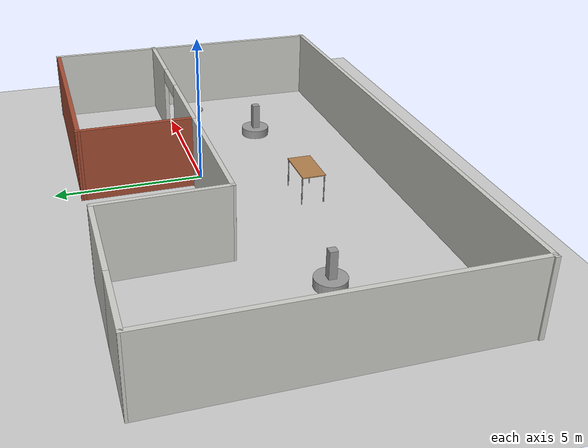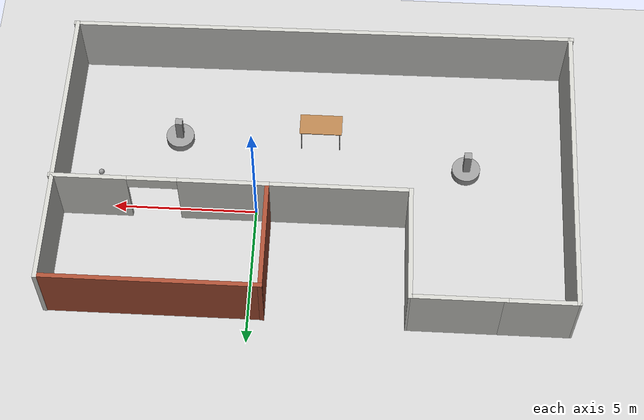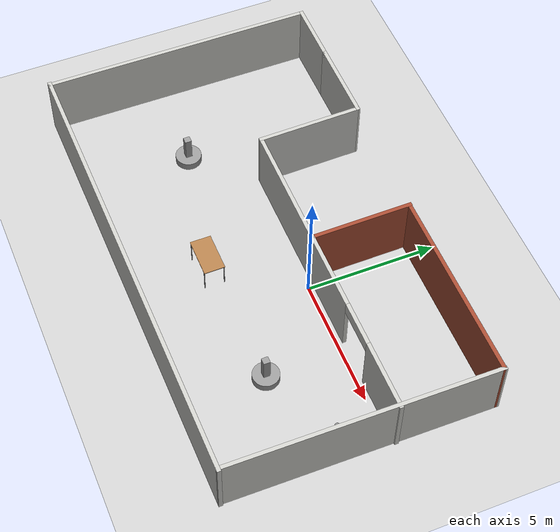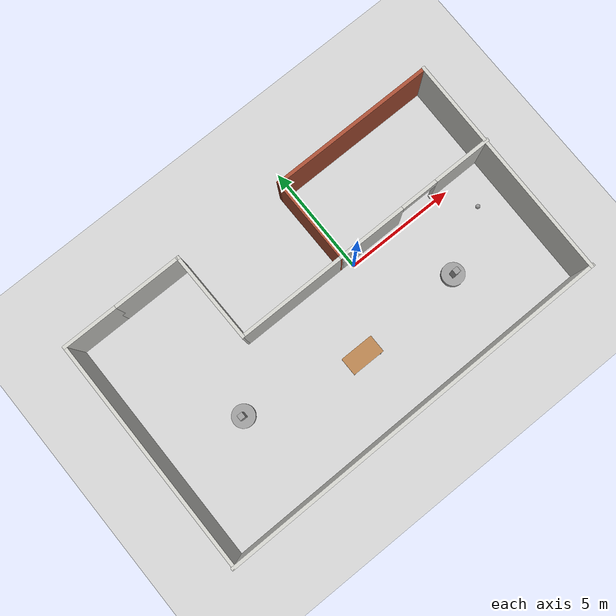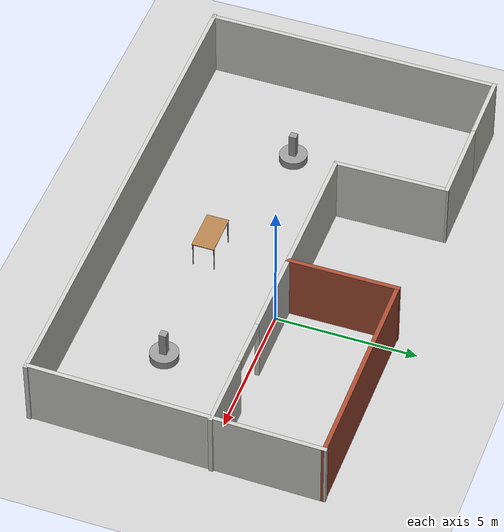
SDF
<sdf version="1.6">
 <world name="default">
  <light name="sun" type="directional">
   <pose>0 0 10 0 -0 0</pose>
   <diffuse>0.8 0.8 0.8 1</diffuse>
   <specular>0.2 0.2 0.2 1</specular>
   <attenuation>
    <range>1000</range>
    <constant>0.9</constant>
    <linear>0.01</linear>
    <quadratic>0.001</quadratic>
   </attenuation>
   <direction>-0.5 0.1 -0.9</direction>
  </light>
  <model name="ground_plane">
   <static>1</static>
   <link name="link">
    <collision name="collision">
     <geometry><plane><normal>0 0 1</normal><size>100 100</size></plane></geometry>
     <surface>
      <contact><collide_bitmask>65535</collide_bitmask></contact>
      <friction><ode><mu>100</mu><mu2>50</mu2></ode></friction>
     </surface>
    </collision>
    <visual name="visual">
     <cast_shadows>0</cast_shadows>
     <geometry><plane><normal>0 0 1</normal><size>100 100</size></plane></geometry>
     <material>
      <script><uri>file://media/materials/scripts/gazebo.material</uri><name>Gazebo/Grey</name></script>
     </material>
    </visual>
   </link>
  </model>
  <gravity>0 0 -9.8</gravity>
  <magnetic_field>6e-06 2.3e-05 -4.2e-05</magnetic_field>
  <atmosphere type="adiabatic"/>
  <physics name="default_physics" default="0" type="ode">
   <max_step_size>0.001</max_step_size>
   <real_time_factor>1</real_time_factor>
   <real_time_update_rate>1000</real_time_update_rate>
  </physics>
  <scene><ambient>0.4 0.4 0.4 1</ambient><background>0.7 0.7 0.7 1</background><shadows>1</shadows></scene>
  <spherical_coordinates>
   <surface_model>EARTH_WGS84</surface_model>
   <latitude_deg>0</latitude_deg>
   <longitude_deg>0</longitude_deg>
   <elevation>0</elevation>
   <heading_deg>0</heading_deg>
  </spherical_coordinates>
  <model name="building_and_obj">
   <model name="building">
    <pose>0.129082 1.24162 -0.218762 0 -0 0</pose>
    <link name="Wall_10">
     <collision name="Wall_10_Collision">
      <geometry><box><size>10.3107 0.15 2.5</size></box></geometry>
      <pose>0 0 1.25 0 -0 0</pose>
     </collision>
     <visual name="Wall_10_Visual">
      <pose>0 0 1.25 0 -0 0</pose>
      <geometry><box><size>10.3107 0.15 2.5</size></box></geometry>
      <material>
       <script><uri>file://media/materials/scripts/gazebo.material</uri><name>Gazebo/CeilingTiled</name></script>
       <ambient>0.435294 0.796078 0.67451 1</ambient>
      </material>
      <meta><layer>0</layer></meta>
     </visual>
     <pose>8.82308 0.001226 0 0 -0 -1.58217</pose>
    </link>
    <link name="Wall_11">
     <collision name="Wall_11_Collision">
      <geometry><box><size>17.8668 0.15 2.5</size></box></geometry>
      <pose>0 0 1.25 0 -0 0</pose>
     </collision>
     <visual name="Wall_11_Visual">
      <pose>0 0 1.25 0 -0 0</pose>
      <geometry><box><size>17.8668 0.15 2.5</size></box></geometry>
      <material>
       <script><uri>file://media/materials/scripts/gazebo.material</uri><name>Gazebo/CeilingTiled</name></script>
       <ambient>0.435294 0.796078 0.67451 1</ambient>
      </material>
      <meta><layer>0</layer></meta>
     </visual>
     <pose>-0.039606 -5.14818 0 0 -0 -3.13376</pose>
    </link>
    <link name="Wall_12">
     <collision name="Wall_12_Collision">
      <geometry><box><size>10.5618 0.15 2.5</size></box></geometry>
      <pose>0 0 1.25 0 -0 0</pose>
     </collision>
     <visual name="Wall_12_Visual">
      <pose>0 0 1.25 0 -0 0</pose>
      <geometry><box><size>10.5618 0.15 2.5</size></box></geometry>
      <material>
       <script><uri>file://media/materials/scripts/gazebo.material</uri><name>Gazebo/CeilingTiled</name></script>
       <ambient>0.435294 0.796078 0.67451 1</ambient>
      </material>
      <meta><layer>0</layer></meta>
     </visual>
     <pose>-8.82658 0.011386 0 0 -0 1.56601</pose>
    </link>
    <link name="Wall_13">
     <collision name="Wall_13_Collision">
      <geometry><box><size>2.5 0.15 2.5</size></box></geometry>
      <pose>0 0 1.25 0 -0 0</pose>
     </collision>
     <visual name="Wall_13_Visual">
      <pose>0 0 1.25 0 -0 0</pose>
      <geometry><box><size>2.5 0.15 2.5</size></box></geometry>
      <material>
       <script><uri>file://media/materials/scripts/gazebo.material</uri><name>Gazebo/CeilingTiled</name></script>
       <ambient>0.435294 0.796078 0.67451 1</ambient>
      </material>
      <meta><layer>0</layer></meta>
     </visual>
     <pose>-7.62667 5.21722 0 0 -0 0</pose>
    </link>
    <link name="Wall_18">
     <pose>5.22332 1.26722 0 0 -0 0</pose>
     <visual name="Wall_18_Visual_0">
      <pose>-2.18631 0 1.25 0 -0 0</pose>
      <geometry><box><size>3.12738 0.15 2.5</size></box></geometry>
      <material>
       <script><uri>file://media/materials/scripts/gazebo.material</uri><name>Gazebo/CeilingTiled</name></script>
       <ambient>0.435294 0.796078 0.67451 1</ambient>
      </material>
      <meta><layer>0</layer></meta>
     </visual>
     <collision name="Wall_18_Collision_0">
      <geometry><box><size>3.12738 0.15 2.5</size></box></geometry>
      <pose>-2.18631 0 1.25 0 -0 0</pose>
     </collision>
     <visual name="Wall_18_Visual_1">
      <pose>2.41596 0 1.25 0 -0 0</pose>
      <geometry><box><size>2.66807 0.15 2.5</size></box></geometry>
      <material>
       <script><uri>file://media/materials/scripts/gazebo.material</uri><name>Gazebo/CeilingTiled</name></script>
       <ambient>0.435294 0.796078 0.67451 1</ambient>
      </material>
      <meta><layer>0</layer></meta>
     </visual>
     <collision name="Wall_18_Collision_1">
      <geometry><box><size>2.66807 0.15 2.5</size></box></geometry>
      <pose>2.41596 0 1.25 0 -0 0</pose>
     </collision>
     <visual name="Wall_18_Visual_2">
      <pose>0.229656 0 2.25 0 -0 0</pose>
      <geometry><box><size>1.70454 0.15 0.5</size></box></geometry>
      <material>
       <script><uri>file://media/materials/scripts/gazebo.material</uri><name>Gazebo/CeilingTiled</name></script>
       <ambient>0.435294 0.796078 0.67451 1</ambient>
      </material>
      <meta><layer>0</layer></meta>
     </visual>
     <collision name="Wall_18_Collision_2">
      <geometry><box><size>1.70454 0.15 0.5</size></box></geometry>
      <pose>0.229656 0 2.25 0 -0 0</pose>
     </collision>
    </link>
    <link name="Wall_5">
     <collision name="Wall_5_Collision">
      <geometry><box><size>3.25 0.15 2.5</size></box></geometry>
      <pose>0 0 1.25 0 -0 0</pose>
     </collision>
     <visual name="Wall_5_Visual">
      <pose>0 0 1.25 0 -0 0</pose>
      <geometry><box><size>3.25 0.15 2.5</size></box></geometry>
      <material>
       <script><uri>file://media/materials/scripts/gazebo.material</uri><name>Gazebo/CeilingTiled</name></script>
       <ambient>0.435294 0.796078 0.67451 1</ambient>
      </material>
      <meta><layer>0</layer></meta>
     </visual>
     <pose>-4.90168 5.21722 0 0 -0 0</pose>
    </link>
    <link name="Wall_6">
     <collision name="Wall_6_Collision">
      <geometry><box><size>4.10032 0.15 2.5</size></box></geometry>
      <pose>0 0 1.25 0 -0 0</pose>
     </collision>
     <visual name="Wall_6_Visual">
      <pose>0 0 1.25 0 -0 0</pose>
      <geometry><box><size>4.10032 0.15 2.5</size></box></geometry>
      <material>
       <script><uri>file://media/materials/scripts/gazebo.material</uri><name>Gazebo/CeilingTiled</name></script>
       <ambient>0.435294 0.796078 0.67451 1</ambient>
      </material>
      <meta><layer>0</layer></meta>
     </visual>
     <pose>-3.32667 3.24222 0 0 -0 -1.55814</pose>
    </link>
    <link name="Wall_7">
     <collision name="Wall_7_Collision">
      <geometry><box><size>5 0.15 2.5</size></box></geometry>
      <pose>0 0 1.25 0 -0 0</pose>
     </collision>
     <visual name="Wall_7_Visual">
      <pose>0 0 1.25 0 -0 0</pose>
      <geometry><box><size>5 0.15 2.5</size></box></geometry>
      <material>
       <script><uri>file://media/materials/scripts/gazebo.material</uri><name>Gazebo/CeilingTiled</name></script>
       <ambient>0.435294 0.796078 0.67451 1</ambient>
      </material>
      <meta><layer>0</layer></meta>
     </visual>
     <pose>-0.876675 1.26722 0 0 -0 0</pose>
    </link>
    <link name="Wall_8">
     <collision name="Wall_8_Collision">
      <geometry><box><size>3.96407 0.15 2.5</size></box></geometry>
      <pose>0 0 1.25 0 -0 0</pose>
     </collision>
     <visual name="Wall_8_Visual">
      <pose>0 0 1.25 0 -0 0</pose>
      <geometry><box><size>3.96407 0.15 2.5</size></box></geometry>
      <material>
       <script><uri>file://media/materials/scripts/gazebo.material</uri><name>Gazebo/Bricks</name></script>
       <ambient>0.435294 0.796078 0.67451 1</ambient>
      </material>
      <meta><layer>0</layer></meta>
     </visual>
     <pose>1.53958 3.17423 0 0 -0 1.57538</pose>
    </link>
    <link name="Wall_9">
     <collision name="Wall_9_Collision">
      <geometry><box><size>7.5 0.15 2.5</size></box></geometry>
      <pose>0 0 1.25 0 -0 0</pose>
     </collision>
     <visual name="Wall_9_Visual">
      <pose>0 0 1.25 0 -0 0</pose>
      <geometry><box><size>7.5 0.15 2.5</size></box></geometry>
      <material>
       <script><uri>file://media/materials/scripts/gazebo.material</uri><name>Gazebo/Bricks</name></script>
       <ambient>0.988235 0.913725 0.309804 1</ambient>
      </material>
      <meta><layer>0</layer></meta>
     </visual>
     <pose>5.20584 5.06375 0 0 -0 0</pose>
    </link>
    <static>1</static>
   </model>
   <model name="cylinder_square">
    <link name="link_1">
     <inertial>
      <mass>1</mass>
      <inertia><ixx>0.145833</ixx><ixy>0</ixy><ixz>0</ixz><iyy>0.145833</iyy><iyz>0</iyz><izz>0.125</izz></inertia>
     </inertial>
     <pose>0.00375 0.00375 0.025 0 -0 0</pose>
     <visual name="visual">
      <pose>0 0 -0.3 0 -0 0</pose>
      <geometry><cylinder><radius>0.5</radius><length>0.3</length></cylinder></geometry>
      <material>
       <lighting>1</lighting>
       <script><uri>file://media/materials/scripts/gazebo.material</uri><name>Gazebo/Grey</name></script>
       <shader type="pixel"><normal_map>__default__</normal_map></shader>
       <ambient>0.3 0.3 0.3 1</ambient>
       <diffuse>0.7 0.7 0.7 1</diffuse>
       <specular>0.01 0.01 0.01 1</specular>
       <emissive>0 0 0 1</emissive>
      </material>
     </visual>
     <collision name="collision">
      <pose>0 0 -0.3 0 -0 0</pose>
      <geometry><cylinder><radius>0.5</radius><length>0.3</length></cylinder></geometry>
      <surface>
       <friction>
        <ode><mu>1</mu><mu2>1</mu2><fdir1>0 0 0</fdir1><slip1>0</slip1><slip2>0</slip2></ode>
        <torsional>
         <coefficient>1</coefficient>
         <patch_radius>0</patch_radius>
         <surface_radius>0</surface_radius>
         <use_patch_radius>1</use_patch_radius>
         <ode><slip>0</slip></ode>
        </torsional>
       </friction>
       <bounce><restitution_coefficient>0</restitution_coefficient><threshold>1e+06</threshold></bounce>
       <contact>
        <collide_without_contact>0</collide_without_contact>
        <collide_without_contact_bitmask>1</collide_without_contact_bitmask>
        <collide_bitmask>1</collide_bitmask>
        <ode>
         <soft_cfm>0</soft_cfm>
         <soft_erp>0.2</soft_erp>
         <kp>1e+13</kp>
         <kd>1</kd>
         <max_vel>0.01</max_vel>
         <min_depth>0</min_depth>
        </ode>
        <bullet>
         <split_impulse>1</split_impulse>
         <split_impulse_penetration_threshold>-0.01</split_impulse_penetration_threshold>
         <soft_cfm>0</soft_cfm>
         <soft_erp>0.2</soft_erp>
         <kp>1e+13</kp>
         <kd>1</kd>
        </bullet>
       </contact>
      </surface>
     </collision>
    </link>
    <link name="link_3">
     <inertial>
      <mass>1</mass>
      <inertia>
       <ixx>0.166667</ixx>
       <ixy>0</ixy>
       <ixz>0</ixz>
       <iyy>0.166667</iyy>
       <iyz>0</iyz>
       <izz>0.166667</izz>
      </inertia>
     </inertial>
     <pose>-0.00375 -0.00375 -0.025 0 -0 0</pose>
     <visual name="visual">
      <pose>0 0 0.3 0 -0 0</pose>
      <geometry><box><size>0.25 0.25 1</size></box></geometry>
      <material>
       <lighting>1</lighting>
       <script><uri>file://media/materials/scripts/gazebo.material</uri><name>Gazebo/Grey</name></script>
       <shader type="pixel"><normal_map>__default__</normal_map></shader>
       <ambient>0.3 0.3 0.3 1</ambient>
       <diffuse>0.7 0.7 0.7 1</diffuse>
       <specular>0.01 0.01 0.01 1</specular>
       <emissive>0 0 0 1</emissive>
      </material>
     </visual>
     <collision name="collision">
      <pose>0 0 0.3 0 -0 0</pose>
      <geometry><box><size>0.25 0.25 1</size></box></geometry>
      <surface>
       <friction>
        <ode><mu>1</mu><mu2>1</mu2><fdir1>0 0 0</fdir1><slip1>0</slip1><slip2>0</slip2></ode>
        <torsional>
         <coefficient>1</coefficient>
         <patch_radius>0</patch_radius>
         <surface_radius>0</surface_radius>
         <use_patch_radius>1</use_patch_radius>
         <ode><slip>0</slip></ode>
        </torsional>
       </friction>
       <bounce><restitution_coefficient>0</restitution_coefficient><threshold>1e+06</threshold></bounce>
       <contact>
        <collide_without_contact>0</collide_without_contact>
        <collide_without_contact_bitmask>1</collide_without_contact_bitmask>
        <collide_bitmask>1</collide_bitmask>
        <ode>
         <soft_cfm>0</soft_cfm>
         <soft_erp>0.2</soft_erp>
         <kp>1e+13</kp>
         <kd>1</kd>
         <max_vel>0.01</max_vel>
         <min_depth>0</min_depth>
        </ode>
        <bullet>
         <split_impulse>1</split_impulse>
         <split_impulse_penetration_threshold>-0.01</split_impulse_penetration_threshold>
         <soft_cfm>0</soft_cfm>
         <soft_erp>0.2</soft_erp>
         <kp>1e+13</kp>
         <kd>1</kd>
        </bullet>
       </contact>
      </surface>
     </collision>
    </link>
    <joint name="link_1_JOINT_1" type="revolute">
     <parent>link_1</parent>
     <child>link_3</child>
     <axis>
      <xyz>0 0 1</xyz>
      <limit>
       <lower>-1.79769e+308</lower>
       <upper>1.79769e+308</upper>
       <effort>-1</effort>
       <velocity>-1</velocity>
      </limit>
      <dynamics>
       <spring_reference>0</spring_reference>
       <spring_stiffness>0</spring_stiffness>
       <damping>0</damping>
      </dynamics>
      <use_parent_model_frame>0</use_parent_model_frame>
     </axis>
     <physics>
      <ode><limit><cfm>0</cfm><erp>0.2</erp></limit><suspension><cfm>0</cfm><erp>0.2</erp></suspension></ode>
     </physics>
    </joint>
    <static>0</static>
    <pose>-5.2014 0.274817 0.218762 0 -0 0</pose>
   </model>
   <model name="cylinder_square_clone">
    <link name="link_1">
     <inertial>
      <mass>1</mass>
      <inertia><ixx>0.145833</ixx><ixy>0</ixy><ixz>0</ixz><iyy>0.145833</iyy><iyz>0</iyz><izz>0.125</izz></inertia>
     </inertial>
     <pose>0.00375 0.00375 0.025 0 -0 0</pose>
     <visual name="visual">
      <pose>0 0 -0.3 0 -0 0</pose>
      <geometry><cylinder><radius>0.5</radius><length>0.3</length></cylinder></geometry>
      <material>
       <lighting>1</lighting>
       <script><uri>file://media/materials/scripts/gazebo.material</uri><name>Gazebo/Grey</name></script>
       <shader type="pixel"><normal_map>__default__</normal_map></shader>
       <ambient>0.3 0.3 0.3 1</ambient>
       <diffuse>0.7 0.7 0.7 1</diffuse>
       <specular>0.01 0.01 0.01 1</specular>
       <emissive>0 0 0 1</emissive>
      </material>
     </visual>
     <collision name="collision">
      <pose>0 0 -0.3 0 -0 0</pose>
      <geometry><cylinder><radius>0.5</radius><length>0.3</length></cylinder></geometry>
      <surface>
       <friction>
        <ode><mu>1</mu><mu2>1</mu2><fdir1>0 0 0</fdir1><slip1>0</slip1><slip2>0</slip2></ode>
        <torsional>
         <coefficient>1</coefficient>
         <patch_radius>0</patch_radius>
         <surface_radius>0</surface_radius>
         <use_patch_radius>1</use_patch_radius>
         <ode><slip>0</slip></ode>
        </torsional>
       </friction>
       <bounce><restitution_coefficient>0</restitution_coefficient><threshold>1e+06</threshold></bounce>
       <contact>
        <collide_without_contact>0</collide_without_contact>
        <collide_without_contact_bitmask>1</collide_without_contact_bitmask>
        <collide_bitmask>1</collide_bitmask>
        <ode>
         <soft_cfm>0</soft_cfm>
         <soft_erp>0.2</soft_erp>
         <kp>1e+13</kp>
         <kd>1</kd>
         <max_vel>0.01</max_vel>
         <min_depth>0</min_depth>
        </ode>
        <bullet>
         <split_impulse>1</split_impulse>
         <split_impulse_penetration_threshold>-0.01</split_impulse_penetration_threshold>
         <soft_cfm>0</soft_cfm>
         <soft_erp>0.2</soft_erp>
         <kp>1e+13</kp>
         <kd>1</kd>
        </bullet>
       </contact>
      </surface>
     </collision>
    </link>
    <link name="link_3">
     <inertial>
      <mass>1</mass>
      <inertia>
       <ixx>0.166667</ixx>
       <ixy>0</ixy>
       <ixz>0</ixz>
       <iyy>0.166667</iyy>
       <iyz>0</iyz>
       <izz>0.166667</izz>
      </inertia>
     </inertial>
     <pose>-0.00375 -0.00375 -0.025 0 -0 0</pose>
     <visual name="visual">
      <pose>0 0 0.3 0 -0 0</pose>
      <geometry><box><size>0.25 0.25 1</size></box></geometry>
      <material>
       <lighting>1</lighting>
       <script><uri>file://media/materials/scripts/gazebo.material</uri><name>Gazebo/Grey</name></script>
       <shader type="pixel"><normal_map>__default__</normal_map></shader>
       <ambient>0.3 0.3 0.3 1</ambient>
       <diffuse>0.7 0.7 0.7 1</diffuse>
       <specular>0.01 0.01 0.01 1</specular>
       <emissive>0 0 0 1</emissive>
      </material>
     </visual>
     <collision name="collision">
      <pose>0 0 0.3 0 -0 0</pose>
      <geometry><box><size>0.25 0.25 1</size></box></geometry>
      <surface>
       <friction>
        <ode><mu>1</mu><mu2>1</mu2><fdir1>0 0 0</fdir1><slip1>0</slip1><slip2>0</slip2></ode>
        <torsional>
         <coefficient>1</coefficient>
         <patch_radius>0</patch_radius>
         <surface_radius>0</surface_radius>
         <use_patch_radius>1</use_patch_radius>
         <ode><slip>0</slip></ode>
        </torsional>
       </friction>
       <bounce><restitution_coefficient>0</restitution_coefficient><threshold>1e+06</threshold></bounce>
       <contact>
        <collide_without_contact>0</collide_without_contact>
        <collide_without_contact_bitmask>1</collide_without_contact_bitmask>
        <collide_bitmask>1</collide_bitmask>
        <ode>
         <soft_cfm>0</soft_cfm>
         <soft_erp>0.2</soft_erp>
         <kp>1e+13</kp>
         <kd>1</kd>
         <max_vel>0.01</max_vel>
         <min_depth>0</min_depth>
        </ode>
        <bullet>
         <split_impulse>1</split_impulse>
         <split_impulse_penetration_threshold>-0.01</split_impulse_penetration_threshold>
         <soft_cfm>0</soft_cfm>
         <soft_erp>0.2</soft_erp>
         <kp>1e+13</kp>
         <kd>1</kd>
        </bullet>
       </contact>
      </surface>
     </collision>
    </link>
    <joint name="link_1_JOINT_1" type="revolute">
     <parent>link_1</parent>
     <child>link_3</child>
     <axis>
      <xyz>0 0 1</xyz>
      <limit>
       <lower>-1.79769e+308</lower>
       <upper>1.79769e+308</upper>
       <effort>-1</effort>
       <velocity>-1</velocity>
      </limit>
      <dynamics>
       <spring_reference>0</spring_reference>
       <spring_stiffness>0</spring_stiffness>
       <damping>0</damping>
      </dynamics>
      <use_parent_model_frame>0</use_parent_model_frame>
     </axis>
     <physics>
      <ode><limit><cfm>0</cfm><erp>0.2</erp></limit><suspension><cfm>0</cfm><erp>0.2</erp></suspension></ode>
     </physics>
    </joint>
    <static>0</static>
    <pose>5.06249 -0.637133 0.218762 0 -0 0</pose>
   </model>
   <model name="table">
    <static>1</static>
    <link name="link">
     <collision name="surface">
      <pose>0 0 1 0 -0 0</pose>
      <geometry><box><size>1.5 0.8 0.03</size></box></geometry>
      <surface><friction><ode><mu>0.6</mu><mu2>0.6</mu2></ode></friction></surface>
     </collision>
     <visual name="visual1">
      <pose>0 0 1 0 -0 0</pose>
      <geometry><box><size>1.5 0.8 0.03</size></box></geometry>
      <material>
       <script><uri>file://media/materials/scripts/gazebo.material</uri><name>Gazebo/Wood</name></script>
      </material>
     </visual>
     <collision name="front_left_leg">
      <pose>0.68 0.38 0.5 0 -0 0</pose>
      <geometry><cylinder><radius>0.02</radius><length>1</length></cylinder></geometry>
     </collision>
     <visual name="front_left_leg">
      <pose>0.68 0.38 0.5 0 -0 0</pose>
      <geometry><cylinder><radius>0.02</radius><length>1</length></cylinder></geometry>
      <material>
       <script><uri>file://media/materials/scripts/gazebo.material</uri><name>Gazebo/Grey</name></script>
      </material>
     </visual>
     <collision name="front_right_leg">
      <pose>0.68 -0.38 0.5 0 -0 0</pose>
      <geometry><cylinder><radius>0.02</radius><length>1</length></cylinder></geometry>
     </collision>
     <visual name="front_right_leg">
      <pose>0.68 -0.38 0.5 0 -0 0</pose>
      <geometry><cylinder><radius>0.02</radius><length>1</length></cylinder></geometry>
      <material>
       <script><uri>file://media/materials/scripts/gazebo.material</uri><name>Gazebo/Grey</name></script>
      </material>
     </visual>
     <collision name="back_right_leg">
      <pose>-0.68 -0.38 0.5 0 -0 0</pose>
      <geometry><cylinder><radius>0.02</radius><length>1</length></cylinder></geometry>
     </collision>
     <visual name="back_right_leg">
      <pose>-0.68 -0.38 0.5 0 -0 0</pose>
      <geometry><cylinder><radius>0.02</radius><length>1</length></cylinder></geometry>
      <material>
       <script><uri>file://media/materials/scripts/gazebo.material</uri><name>Gazebo/Grey</name></script>
      </material>
     </visual>
     <collision name="back_left_leg">
      <pose>-0.68 0.38 0.5 0 -0 0</pose>
      <geometry><cylinder><radius>0.02</radius><length>1</length></cylinder></geometry>
     </collision>
     <visual name="back_left_leg">
      <pose>-0.68 0.38 0.5 0 -0 0</pose>
      <geometry><cylinder><radius>0.02</radius><length>1</length></cylinder></geometry>
      <material>
       <script><uri>file://media/materials/scripts/gazebo.material</uri><name>Gazebo/Grey</name></script>
      </material>
     </visual>
    </link>
    <pose>0.009838 -0.879309 -0.218762 0 -0 0</pose>
   </model>
   <static>0</static>
   <pose>-2.145 -2.23134 0.218762 0 -0 0</pose>
  </model>
  <model name="white_ball2">
   <link name="link_0">
    <inertial>
     <mass>1</mass>
     <inertia><ixx>0.1</ixx><ixy>0</ixy><ixz>0</ixz><iyy>0.1</iyy><iyz>0</iyz><izz>0.1</izz></inertia>
    </inertial>
    <pose>-0.0418 -0.197685 0.25 0 -0 0</pose>
    <visual name="visual">
     <geometry><sphere><radius>0.1</radius></sphere></geometry>
     <material>
      <lighting>1</lighting>
      <script><uri>file://media/materials/scripts/gazebo.material</uri><name>Gazebo/Grey</name></script>
      <shader type="pixel"><normal_map>__default__</normal_map></shader>
      <ambient>1 1 1 1</ambient>
      <diffuse>1 1 1 1</diffuse>
      <specular>1 1 1 1</specular>
      <emissive>1 1 1 1</emissive>
     </material>
    </visual>
    <collision name="collision">
     <geometry><sphere><radius>0.1</radius></sphere></geometry>
     <surface>
      <friction>
       <ode><mu>1</mu><mu2>1</mu2><fdir1>0 0 0</fdir1><slip1>0</slip1><slip2>0</slip2></ode>
       <torsional>
        <coefficient>1</coefficient>
        <patch_radius>0</patch_radius>
        <surface_radius>0</surface_radius>
        <use_patch_radius>1</use_patch_radius>
        <ode><slip>0</slip></ode>
       </torsional>
      </friction>
      <bounce><restitution_coefficient>0</restitution_coefficient><threshold>1e+06</threshold></bounce>
      <contact>
       <collide_without_contact>0</collide_without_contact>
       <collide_without_contact_bitmask>1</collide_without_contact_bitmask>
       <collide_bitmask>1</collide_bitmask>
       <ode>
        <soft_cfm>0</soft_cfm>
        <soft_erp>0.2</soft_erp>
        <kp>1e+13</kp>
        <kd>1</kd>
        <max_vel>0.01</max_vel>
        <min_depth>0</min_depth>
       </ode>
       <bullet>
        <split_impulse>1</split_impulse>
        <split_impulse_penetration_threshold>-0.01</split_impulse_penetration_threshold>
        <soft_cfm>0</soft_cfm>
        <soft_erp>0.2</soft_erp>
        <kp>1e+13</kp>
        <kd>1</kd>
       </bullet>
      </contact>
     </surface>
    </collision>
   </link>
   <model name="white_ball"><static>0</static><pose>0.041801 0.197683 -0.25 0 -0 0</pose></model>
   <static>0</static>
   <pose>5.64932 -1.12591 -0.15 0 -0 0</pose>
  </model>
  <audio><device>default</device></audio>
 </world>
</sdf>
